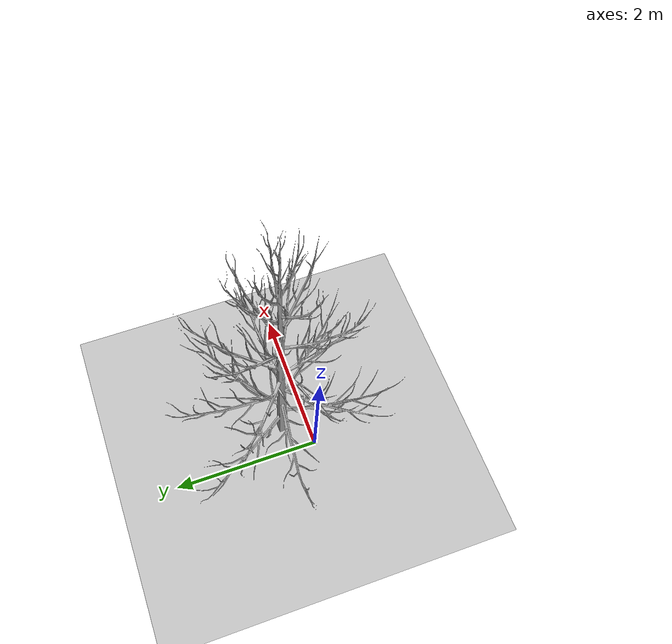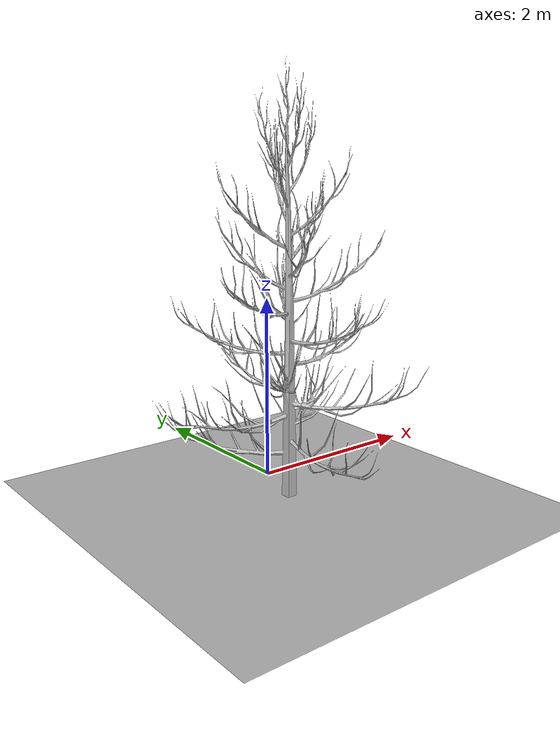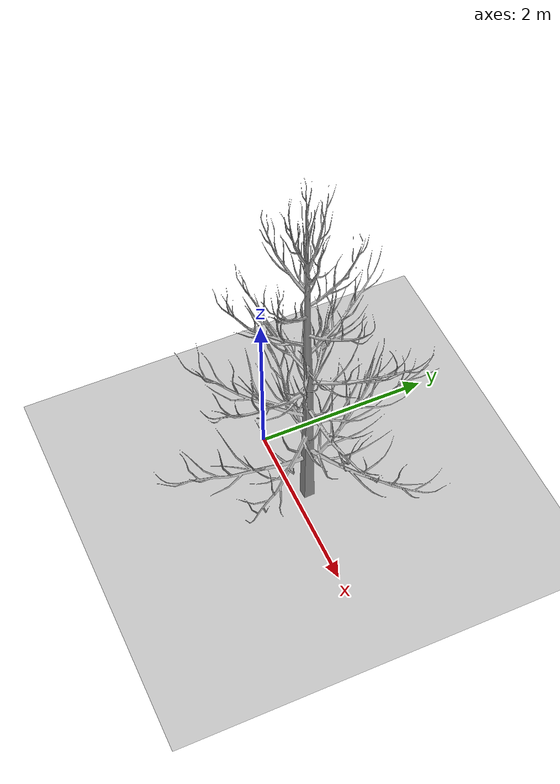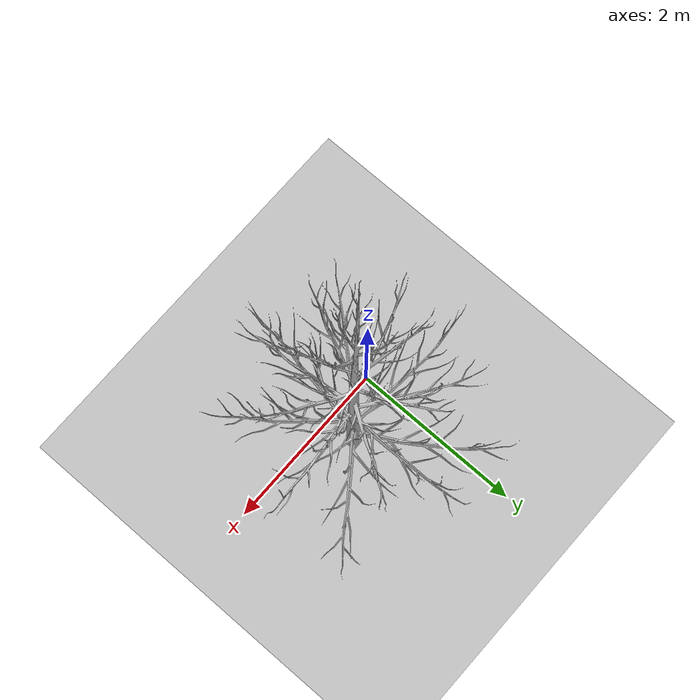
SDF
<?xml version="1.0"?>
<sdf version="1.6">
  <world name="tree">

    <light name="sun" type="directional">
      <cast_shadows>true</cast_shadows>
      <pose>0 0 10 0 0 0</pose>
      <diffuse>0.8 0.8 0.8 1</diffuse>
      <specular>0.2 0.2 0.2 1</specular>
      <direction>-0.5 0.1 -0.9</direction>
    </light>

    <model name="ground_plane">
      <static>true</static>
      <link name="link">
        <collision name="collision">
          <geometry>
            <mesh><uri>meshes/dae/Ground_Plane.dae</uri></mesh>
          </geometry>
        </collision>
        <visual name="visual">
          <geometry>
            <mesh><uri>meshes/dae/Ground_Plane.dae</uri></mesh>
          </geometry>
          <cast_shadows>true</cast_shadows>
        </visual>
      </link>
    </model>

    <model name="forest_tree_no_leaves">
      <static>true</static>
      <pose>0.55 0.3 -1.75 0 0 1.3</pose>
      <link name="link">
        <collision name="collision">
          <geometry>
            <mesh><uri>meshes/dae/Forest_Tree_No_Leaves.dae</uri></mesh>
          </geometry>
        </collision>
        <visual name="visual">
          <geometry>
            <mesh><uri>meshes/dae/Forest_Tree_No_Leaves.dae</uri></mesh>
          </geometry>
          <cast_shadows>true</cast_shadows>
        </visual>
      </link>
    </model>

  </world>
</sdf>
